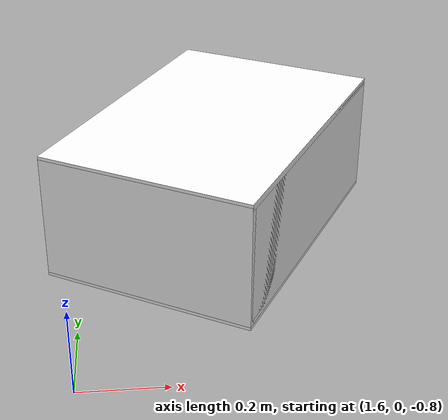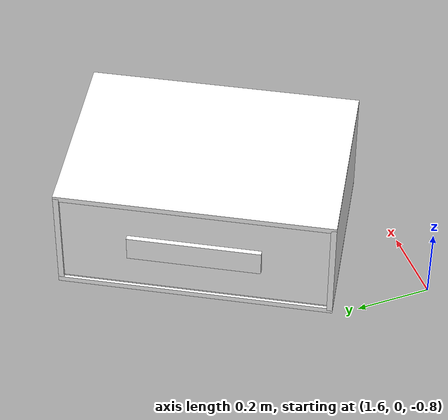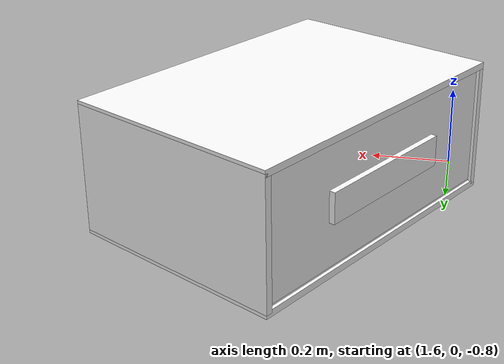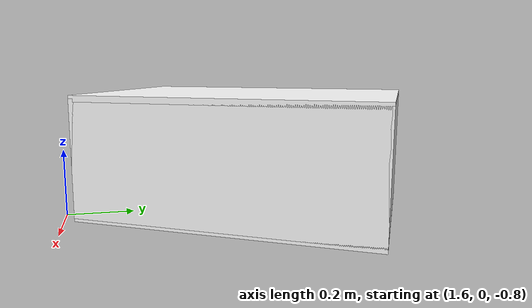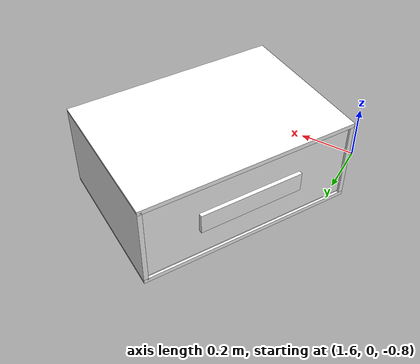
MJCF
<mujoco model="drawer">
        <compiler angle="radian" eulerseq='zxy' />
        <option gravity = "0 0 0" />
        <option>
            <flag contact = "disable"/>
        </option>
        <statistic	extent="1.0" center="0.0 0.0 0.0"/>
        <visual>
            <map fogstart="3" fogend="5" force="0.1" znear=" 0.100000 " zfar=" 12.000000 "/>
        </visual>
        <size njmax="500" nconmax="100" />
        <actuator>
            <velocity joint="drawerJ" name="viva_revolution" kv='10'></velocity>
        </actuator>
        <asset>
            <texture builtin="flat" name="objtex" height="32" width="32" rgb1="1 1 1" type="cube"></texture>
            <texture builtin="flat" name="handletex" height="32" width="32" rgb1="1 1 1" type="cube"></texture>
            <material name="geomObj" shininess="0.03" specular="0.75" texture="objtex"></material>
            <material name="geomHandle" shininess="0.03" specular="0.75" texture="handletex"></material>
        </asset>
        <worldbody>
            <body name="cabinet_bottom" pos= " 1.930114 0.494131 -0.705278 "  quat= " 0.257385 0.000000 0.000000 0.966309" >
                <inertial pos="0 0 0" mass="1" diaginertia="1 1 1" />
                <geom size= " 0.248226 0.358532 0.007407 "  type="box" material="geomObj" name="b"/>
                <body name="cabinet_left" pos= " 0.000000 -0.351126 0.141883 " >
                    <inertial pos="0 0 0" mass="1" diaginertia="1 1 1" />
                    <geom size= " 0.248226 0.007407 0.141883 "  type="box" material="geomObj" name="c" />
                </body>
                <body name="cabinet_right" pos= " 0.000000 0.351126 0.141883 " >
                    <inertial pos="0 0 0" mass="1" diaginertia="1 1 1" />
                    <geom size= " 0.248226 0.007407 0.141883 "  type="box" material="geomObj" name="d" />
                </body>
                <body name="cabinet_top" pos= " 0.000000 0.000000 0.283766 " >
                    <inertial pos="0 0 0" mass="1" diaginertia="1 1 1" />
                    <geom size= " 0.248226 0.358532 0.007407 "  type="box" material="geomObj" name="e"/>
                </body>
                <body name="cabinet_back" pos= " -0.240819 0.000000 0.141883 "  >
                    <inertial pos="0 0 0" mass="1" diaginertia="1 1 1" />
                    <geom size= " 0.007407 0.358532 0.141883 "  type="box" material="geomObj" name="f" />
                </body>
                <body name="drawer" pos= " 0.000000 0.000000 0.003703 "  >
                    <geom size= " 0.240819 0.351126 0.007407 "  type="box" material="geomObj" name="ddddfadfadsfac" />
                    <joint name="drawerJ" pos="0 0 0" axis="1 0 0" type="slide" limited="true" range= "0  0.3723386451601982 "  />
                    <inertial pos="0 0 0" mass="1" diaginertia="1 1 1" />
                    <body name="drawer_left" pos= " 0.000000 -0.343719 0.141883 " >
                        <inertial pos="0 0 0" mass="1" diaginertia="1 1 1" />
                        <geom size= " 0.240819 0.007407 0.134476 "  type="box" material="geomObj" name="ddc" />
                    </body>
                    <body name="drawer_right" pos= " 0.000000 0.343719 0.141883 " >
                        <inertial pos="0 0 0" mass="1" diaginertia="1 1 1" />
                        <geom size= " 0.240819 0.007407 0.134476 "  type="box" material="geomObj" name="dddd" />
                    </body>
                    <body name="drawer_front" pos= " 0.233413 0.000000 0.141883 " >
                        <inertial pos="0 0 0" mass="1" diaginertia="1 1 1" />
                        <geom size= " 0.007407 0.351126 0.134476 "  type="box" material="geomObj" name="eeeee"/>
                    </body>
                    <body name="drawer_back" pos= " -0.240819 0.000000 0.141883 "  >
                        <inertial pos="0 0 0" mass="1" diaginertia="1 1 1" />
                        <geom size= " 0.007407 0.351126 0.134476 "  type="box" material="geomObj" name="fffff" />
                    </body>
                    <body name="knob" pos= " 0.248226 0.000000 0.141883 " >
                        <inertial pos="0 0 0" mass="0.1" diaginertia="0.1 0.1 0.1" />
                        <geom size= " 0.006612 0.172679 0.033879 "  pos="0 0 0" type="box" material="geomHandle" name="handle"/>
                    </body>
                </body>
            </body>
            <body name="external_camera_body_0" pos="0.0 0 0.00">
                <camera euler="-1.57 1.57 0.0" fovy=" 54.280851 " name="external_camera_0" pos="0.0 0 0"></camera>
                <inertial pos= " 0.00 0.0 0.000000 " mass="1" diaginertia="1 1 1" />
                <joint name="cam_j" pos="0.0 0 0" axis = "1 0 0" type="free" />
            </body>
        </worldbody>
    </mujoco>
